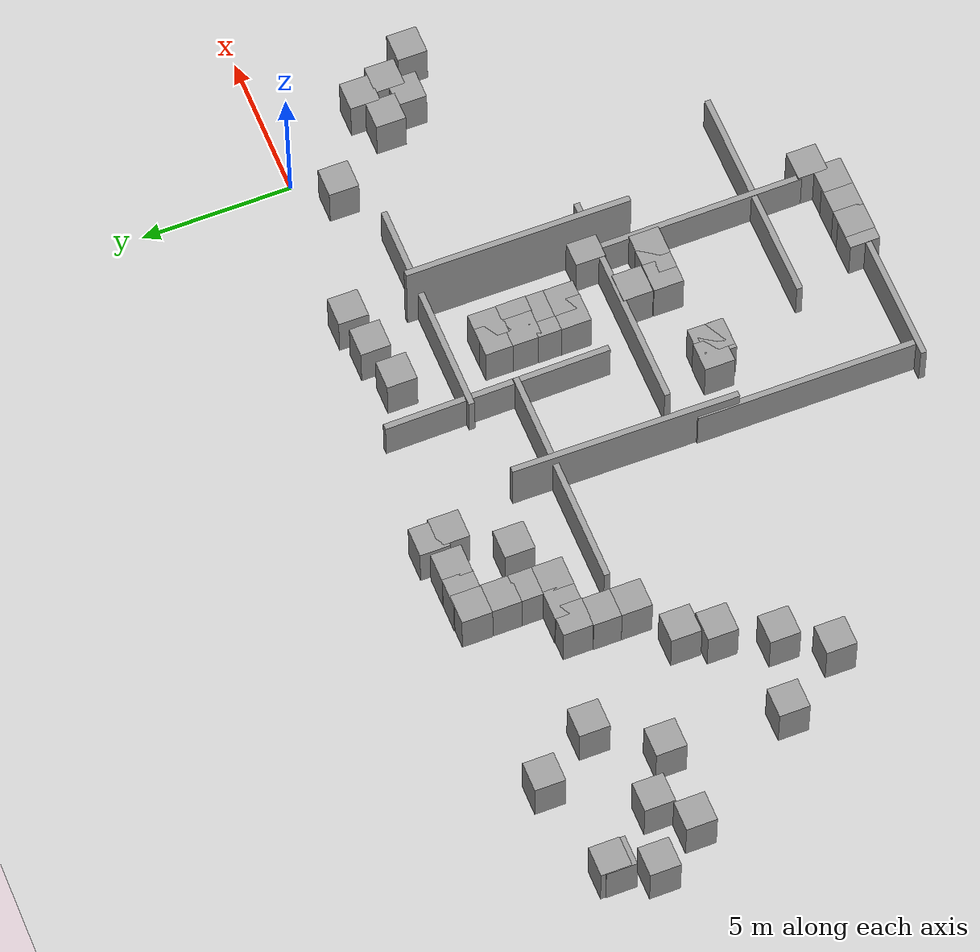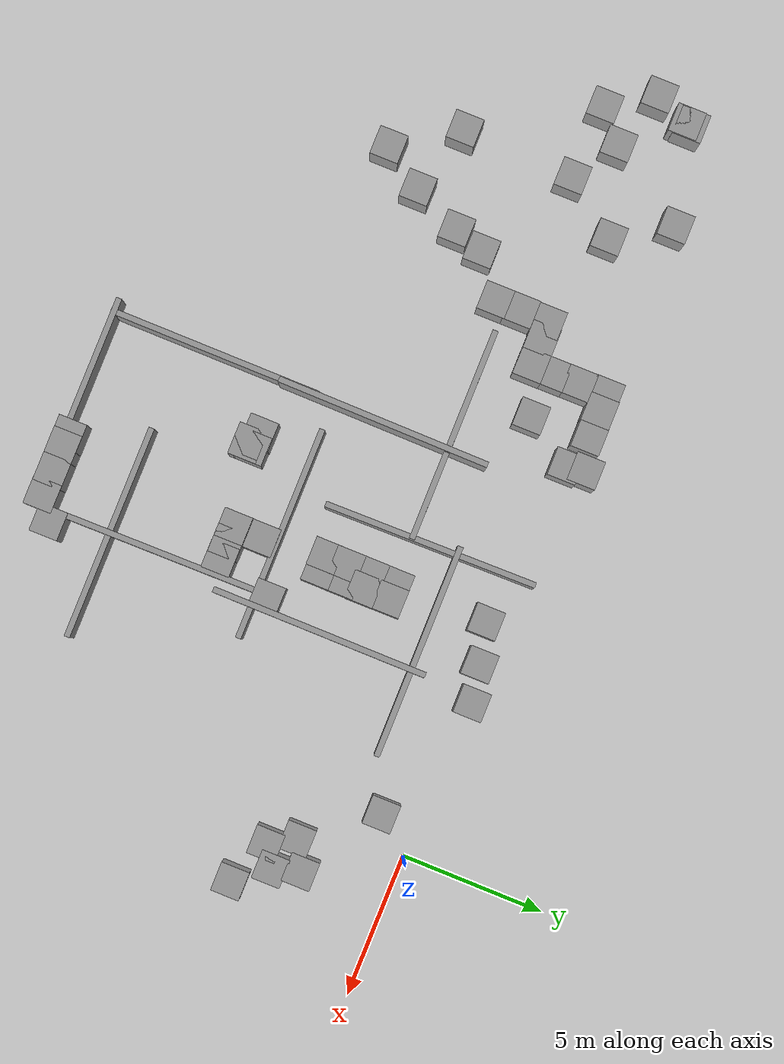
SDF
<sdf version="1.4">
 <world name="default">
  <model name="ground_plane">
   <static>1</static>
   <link name="link">
    <collision name="collision">
     <geometry><plane><normal>0 0 1</normal><size>100 100</size></plane></geometry>
     <surface><friction><ode><mu>100</mu><mu2>50</mu2></ode></friction></surface>
    </collision>
    <visual name="visual">
     <cast_shadows>0</cast_shadows>
     <geometry><plane><normal>0 0 1</normal><size>100 100</size></plane></geometry>
     <material>
      <script><uri>file://media/materials/scripts/gazebo.material</uri><name>Gazebo/Grey</name></script>
     </material>
    </visual>
    <velocity_decay><linear>0</linear><angular>0</angular></velocity_decay>
   </link>
  </model>
  <model name="unit_box_8">
   <pose>0.712903 -3.52038 0.5 0 0 -0.000671</pose>
   <static>1</static>
   <link name="link">
    <inertial>
     <mass>1</mass>
     <inertia><ixx>1</ixx><ixy>0</ixy><ixz>0</ixz><iyy>1</iyy><iyz>0</iyz><izz>1</izz></inertia>
    </inertial>
    <collision name="collision"><geometry><box><size>1 1 2</size></box></geometry></collision>
    <visual name="visual">
     <geometry><box><size>1 1 2</size></box></geometry>
     <material>
      <script><uri>file://media/materials/scripts/gazebo.material</uri><name>Gazebo/Grey</name></script>
     </material>
    </visual>
    <velocity_decay><linear>0</linear><angular>0</angular></velocity_decay>
   </link>
   <static>0</static>
  </model>
  <model name="unit_box_15">
   <pose>-18.4176 -4.09266 0.5 0 0 -3.9e-05</pose>
   <static>1</static>
   <link name="link">
    <inertial>
     <mass>1</mass>
     <inertia><ixx>1</ixx><ixy>0</ixy><ixz>0</ixz><iyy>1</iyy><iyz>0</iyz><izz>1</izz></inertia>
    </inertial>
    <collision name="collision"><geometry><box><size>1 1 2</size></box></geometry></collision>
    <visual name="visual">
     <geometry><box><size>1 1 2</size></box></geometry>
     <material>
      <script><uri>file://media/materials/scripts/gazebo.material</uri><name>Gazebo/Grey</name></script>
     </material>
    </visual>
    <velocity_decay><linear>0</linear><angular>0</angular></velocity_decay>
   </link>
   <static>0</static>
  </model>
  <model name="unit_box_17">
   <pose>-11.3499 -9.74987 0.5 0 0 -1.9e-05</pose>
   <static>1</static>
   <link name="link">
    <inertial>
     <mass>1</mass>
     <inertia><ixx>1</ixx><ixy>0</ixy><ixz>0</ixz><iyy>1</iyy><iyz>0</iyz><izz>1</izz></inertia>
    </inertial>
    <collision name="collision"><geometry><box><size>1 1 2</size></box></geometry></collision>
    <visual name="visual">
     <geometry><box><size>1 1 2</size></box></geometry>
     <material>
      <script><uri>file://media/materials/scripts/gazebo.material</uri><name>Gazebo/Grey</name></script>
     </material>
    </visual>
    <velocity_decay><linear>0</linear><angular>0</angular></velocity_decay>
   </link>
   <static>0</static>
  </model>
  <model name="unit_box_20">
   <pose>-6.91683 -0.051818 0.5 0 0 -1e-05</pose>
   <static>1</static>
   <link name="link">
    <inertial>
     <mass>1</mass>
     <inertia><ixx>1</ixx><ixy>0</ixy><ixz>0</ixz><iyy>1</iyy><iyz>0</iyz><izz>1</izz></inertia>
    </inertial>
    <collision name="collision"><geometry><box><size>1 1 2</size></box></geometry></collision>
    <visual name="visual">
     <geometry><box><size>1 1 2</size></box></geometry>
     <material>
      <script><uri>file://media/materials/scripts/gazebo.material</uri><name>Gazebo/Grey</name></script>
     </material>
    </visual>
    <velocity_decay><linear>0</linear><angular>0</angular></velocity_decay>
   </link>
   <static>0</static>
  </model>
  <model name="unit_box_21">
   <pose>-1.09257 -1.23498 0.5 0 0 -1.2e-05</pose>
   <static>1</static>
   <link name="link">
    <inertial>
     <mass>1</mass>
     <inertia><ixx>1</ixx><ixy>0</ixy><ixz>0</ixz><iyy>1</iyy><iyz>0</iyz><izz>1</izz></inertia>
    </inertial>
    <collision name="collision"><geometry><box><size>1 1 2</size></box></geometry></collision>
    <visual name="visual">
     <geometry><box><size>1 1 2</size></box></geometry>
     <material>
      <script><uri>file://media/materials/scripts/gazebo.material</uri><name>Gazebo/Grey</name></script>
     </material>
    </visual>
    <velocity_decay><linear>0</linear><angular>0</angular></velocity_decay>
   </link>
   <static>0</static>
  </model>
  <model name="unit_box_24">
   <pose>1.94664 -3.96372 0.5 0 0 -1.4e-05</pose>
   <static>1</static>
   <link name="link">
    <inertial>
     <mass>1</mass>
     <inertia><ixx>1</ixx><ixy>0</ixy><ixz>0</ixz><iyy>1</iyy><iyz>0</iyz><izz>1</izz></inertia>
    </inertial>
    <collision name="collision"><geometry><box><size>1 1 2</size></box></geometry></collision>
    <visual name="visual">
     <geometry><box><size>1 1 2</size></box></geometry>
     <material>
      <script><uri>file://media/materials/scripts/gazebo.material</uri><name>Gazebo/Grey</name></script>
     </material>
    </visual>
    <velocity_decay><linear>0</linear><angular>0</angular></velocity_decay>
   </link>
   <static>0</static>
  </model>
  <model name="unit_box_25">
   <pose>-6.35101 -7.46076 0.5 0 0 -1.5e-05</pose>
   <static>1</static>
   <link name="link">
    <inertial>
     <mass>1</mass>
     <inertia><ixx>1</ixx><ixy>0</ixy><ixz>0</ixz><iyy>1</iyy><iyz>0</iyz><izz>1</izz></inertia>
    </inertial>
    <collision name="collision"><geometry><box><size>1 1 2</size></box></geometry></collision>
    <visual name="visual">
     <geometry><box><size>1 1 2</size></box></geometry>
     <material>
      <script><uri>file://media/materials/scripts/gazebo.material</uri><name>Gazebo/Grey</name></script>
     </material>
    </visual>
    <velocity_decay><linear>0</linear><angular>0</angular></velocity_decay>
   </link>
   <static>0</static>
  </model>
  <model name="unit_box_26">
   <pose>2.82516 -5.06373 0.5 0 0 -1.1e-05</pose>
   <static>1</static>
   <link name="link">
    <inertial>
     <mass>1</mass>
     <inertia><ixx>1</ixx><ixy>0</ixy><ixz>0</ixz><iyy>1</iyy><iyz>0</iyz><izz>1</izz></inertia>
    </inertial>
    <collision name="collision"><geometry><box><size>1 1 2</size></box></geometry></collision>
    <visual name="visual">
     <geometry><box><size>1 1 2</size></box></geometry>
     <material>
      <script><uri>file://media/materials/scripts/gazebo.material</uri><name>Gazebo/Grey</name></script>
     </material>
    </visual>
    <velocity_decay><linear>0</linear><angular>0</angular></velocity_decay>
   </link>
   <static>0</static>
  </model>
  <model name="unit_box_27">
   <pose>-8.35413 -5.39726 0.5 0 0 -1e-05</pose>
   <static>1</static>
   <link name="link">
    <inertial>
     <mass>1</mass>
     <inertia><ixx>1</ixx><ixy>0</ixy><ixz>0</ixz><iyy>1</iyy><iyz>0</iyz><izz>1</izz></inertia>
    </inertial>
    <collision name="collision"><geometry><box><size>1 1 2</size></box></geometry></collision>
    <visual name="visual">
     <geometry><box><size>1 1 2</size></box></geometry>
     <material>
      <script><uri>file://media/materials/scripts/gazebo.material</uri><name>Gazebo/Grey</name></script>
     </material>
    </visual>
    <velocity_decay><linear>0</linear><angular>0</angular></velocity_decay>
   </link>
   <static>0</static>
  </model>
  <model name="unit_box_28">
   <pose>1.24112 -4.4264 0.5 0 0 -1.1e-05</pose>
   <static>1</static>
   <link name="link">
    <inertial>
     <mass>1</mass>
     <inertia><ixx>1</ixx><ixy>0</ixy><ixz>0</ixz><iyy>1</iyy><iyz>0</iyz><izz>1</izz></inertia>
    </inertial>
    <collision name="collision"><geometry><box><size>1 1 2</size></box></geometry></collision>
    <visual name="visual">
     <geometry><box><size>1 1 2</size></box></geometry>
     <material>
      <script><uri>file://media/materials/scripts/gazebo.material</uri><name>Gazebo/Grey</name></script>
     </material>
    </visual>
    <velocity_decay><linear>0</linear><angular>0</angular></velocity_decay>
   </link>
   <static>0</static>
  </model>
  <model name="unit_box_35">
   <pose>-7.82124 -6.15776 0.5 0 0 -1.5e-05</pose>
   <static>1</static>
   <link name="link">
    <inertial>
     <mass>1</mass>
     <inertia><ixx>1</ixx><ixy>0</ixy><ixz>0</ixz><iyy>1</iyy><iyz>0</iyz><izz>1</izz></inertia>
    </inertial>
    <collision name="collision"><geometry><box><size>1 1 2</size></box></geometry></collision>
    <visual name="visual">
     <geometry><box><size>1 1 2</size></box></geometry>
     <material>
      <script><uri>file://media/materials/scripts/gazebo.material</uri><name>Gazebo/Grey</name></script>
     </material>
    </visual>
    <velocity_decay><linear>0</linear><angular>0</angular></velocity_decay>
   </link>
   <static>0</static>
  </model>
  <model name="unit_box_36">
   <pose>-8.35812 -6.16943 0.5 0 0 -1.5e-05</pose>
   <static>1</static>
   <link name="link">
    <inertial>
     <mass>1</mass>
     <inertia><ixx>1</ixx><ixy>0</ixy><ixz>0</ixz><iyy>1</iyy><iyz>0</iyz><izz>1</izz></inertia>
    </inertial>
    <collision name="collision"><geometry><box><size>1 1 2</size></box></geometry></collision>
    <visual name="visual">
     <geometry><box><size>1 1 2</size></box></geometry>
     <material>
      <script><uri>file://media/materials/scripts/gazebo.material</uri><name>Gazebo/Grey</name></script>
     </material>
    </visual>
    <velocity_decay><linear>0</linear><angular>0</angular></velocity_decay>
   </link>
   <static>0</static>
  </model>
  <model name="unit_box_37">
   <pose>-7.80224 -4.57019 0.5 0 0 -1.4e-05</pose>
   <static>1</static>
   <link name="link">
    <inertial>
     <mass>1</mass>
     <inertia><ixx>1</ixx><ixy>0</ixy><ixz>0</ixz><iyy>1</iyy><iyz>0</iyz><izz>1</izz></inertia>
    </inertial>
    <collision name="collision"><geometry><box><size>1 1 2</size></box></geometry></collision>
    <visual name="visual">
     <geometry><box><size>1 1 2</size></box></geometry>
     <material>
      <script><uri>file://media/materials/scripts/gazebo.material</uri><name>Gazebo/Grey</name></script>
     </material>
    </visual>
    <velocity_decay><linear>0</linear><angular>0</angular></velocity_decay>
   </link>
   <static>0</static>
  </model>
  <model name="unit_box_42">
   <pose>-18.4169 -3.16567 0.5 0 -0 0.001796</pose>
   <static>1</static>
   <link name="link">
    <inertial>
     <mass>1</mass>
     <inertia><ixx>1</ixx><ixy>0</ixy><ixz>0</ixz><iyy>1</iyy><iyz>0</iyz><izz>1</izz></inertia>
    </inertial>
    <collision name="collision"><geometry><box><size>1 1 2</size></box></geometry></collision>
    <visual name="visual">
     <geometry><box><size>1 1 2</size></box></geometry>
     <material>
      <script><uri>file://media/materials/scripts/gazebo.material</uri><name>Gazebo/Grey</name></script>
     </material>
    </visual>
    <velocity_decay><linear>0</linear><angular>0</angular></velocity_decay>
   </link>
   <static>0</static>
  </model>
  <model name="unit_box_43">
   <pose>-18.3967 -2.18667 0.5 0 -0 0.001375</pose>
   <static>1</static>
   <link name="link">
    <inertial>
     <mass>1</mass>
     <inertia><ixx>1</ixx><ixy>0</ixy><ixz>0</ixz><iyy>1</iyy><iyz>0</iyz><izz>1</izz></inertia>
    </inertial>
    <collision name="collision"><geometry><box><size>1 1 2</size></box></geometry></collision>
    <visual name="visual">
     <geometry><box><size>1 1 2</size></box></geometry>
     <material>
      <script><uri>file://media/materials/scripts/gazebo.material</uri><name>Gazebo/Grey</name></script>
     </material>
    </visual>
    <velocity_decay><linear>0</linear><angular>0</angular></velocity_decay>
   </link>
   <static>0</static>
  </model>
  <model name="unit_box_44">
   <pose>-17.7736 -2.1615 0.5 0 -0 0.000932</pose>
   <static>1</static>
   <link name="link">
    <inertial>
     <mass>1</mass>
     <inertia><ixx>1</ixx><ixy>0</ixy><ixz>0</ixz><iyy>1</iyy><iyz>0</iyz><izz>1</izz></inertia>
    </inertial>
    <collision name="collision"><geometry><box><size>1 1 2</size></box></geometry></collision>
    <visual name="visual">
     <geometry><box><size>1 1 2</size></box></geometry>
     <material>
      <script><uri>file://media/materials/scripts/gazebo.material</uri><name>Gazebo/Grey</name></script>
     </material>
    </visual>
    <velocity_decay><linear>0</linear><angular>0</angular></velocity_decay>
   </link>
   <static>0</static>
  </model>
  <model name="unit_box_45">
   <pose>-16.8401 -2.16548 0.5 0 -0 0.000893</pose>
   <static>1</static>
   <link name="link">
    <inertial>
     <mass>1</mass>
     <inertia><ixx>1</ixx><ixy>0</ixy><ixz>0</ixz><iyy>1</iyy><iyz>0</iyz><izz>1</izz></inertia>
    </inertial>
    <collision name="collision"><geometry><box><size>1 1 2</size></box></geometry></collision>
    <visual name="visual">
     <geometry><box><size>1 1 2</size></box></geometry>
     <material>
      <script><uri>file://media/materials/scripts/gazebo.material</uri><name>Gazebo/Grey</name></script>
     </material>
    </visual>
    <velocity_decay><linear>0</linear><angular>0</angular></velocity_decay>
   </link>
   <static>0</static>
  </model>
  <model name="unit_box_46">
   <pose>-16.8434 -1.38674 0.5 0 -0 0.000802</pose>
   <static>1</static>
   <link name="link">
    <inertial>
     <mass>1</mass>
     <inertia><ixx>1</ixx><ixy>0</ixy><ixz>0</ixz><iyy>1</iyy><iyz>0</iyz><izz>1</izz></inertia>
    </inertial>
    <collision name="collision"><geometry><box><size>1 1 2</size></box></geometry></collision>
    <visual name="visual">
     <geometry><box><size>1 1 2</size></box></geometry>
     <material>
      <script><uri>file://media/materials/scripts/gazebo.material</uri><name>Gazebo/Grey</name></script>
     </material>
    </visual>
    <velocity_decay><linear>0</linear><angular>0</angular></velocity_decay>
   </link>
   <static>0</static>
  </model>
  <model name="unit_box_47">
   <pose>-15.3131 0.534187 0.5 0 -0 0.000729</pose>
   <static>1</static>
   <link name="link">
    <inertial>
     <mass>1</mass>
     <inertia><ixx>1</ixx><ixy>0</ixy><ixz>0</ixz><iyy>1</iyy><iyz>0</iyz><izz>1</izz></inertia>
    </inertial>
    <collision name="collision"><geometry><box><size>1 1 2</size></box></geometry></collision>
    <visual name="visual">
     <geometry><box><size>1 1 2</size></box></geometry>
     <material>
      <script><uri>file://media/materials/scripts/gazebo.material</uri><name>Gazebo/Grey</name></script>
     </material>
    </visual>
    <velocity_decay><linear>0</linear><angular>0</angular></velocity_decay>
   </link>
   <static>0</static>
  </model>
  <model name="unit_box_48">
   <pose>-16.2487 0.525396 0.5 0 0 -0.000119</pose>
   <static>1</static>
   <link name="link">
    <inertial>
     <mass>1</mass>
     <inertia><ixx>1</ixx><ixy>0</ixy><ixz>0</ixz><iyy>1</iyy><iyz>0</iyz><izz>1</izz></inertia>
    </inertial>
    <collision name="collision"><geometry><box><size>1 1 2</size></box></geometry></collision>
    <visual name="visual">
     <geometry><box><size>1 1 2</size></box></geometry>
     <material>
      <script><uri>file://media/materials/scripts/gazebo.material</uri><name>Gazebo/Grey</name></script>
     </material>
    </visual>
    <velocity_decay><linear>0</linear><angular>0</angular></velocity_decay>
   </link>
   <static>0</static>
  </model>
  <model name="unit_box_49">
   <pose>-16.8494 -0.460464 0.5 0 0 -7.3e-05</pose>
   <static>1</static>
   <link name="link">
    <inertial>
     <mass>1</mass>
     <inertia><ixx>1</ixx><ixy>0</ixy><ixz>0</ixz><iyy>1</iyy><iyz>0</iyz><izz>1</izz></inertia>
    </inertial>
    <collision name="collision"><geometry><box><size>1 1 2</size></box></geometry></collision>
    <visual name="visual">
     <geometry><box><size>1 1 2</size></box></geometry>
     <material>
      <script><uri>file://media/materials/scripts/gazebo.material</uri><name>Gazebo/Grey</name></script>
     </material>
    </visual>
    <velocity_decay><linear>0</linear><angular>0</angular></velocity_decay>
   </link>
   <static>0</static>
  </model>
  <model name="unit_box_50">
   <pose>-16.8613 0.50095 0.5 0 0 -7.1e-05</pose>
   <static>1</static>
   <link name="link">
    <inertial>
     <mass>1</mass>
     <inertia><ixx>1</ixx><ixy>0</ixy><ixz>0</ixz><iyy>1</iyy><iyz>0</iyz><izz>1</izz></inertia>
    </inertial>
    <collision name="collision"><geometry><box><size>1 1 2</size></box></geometry></collision>
    <visual name="visual">
     <geometry><box><size>1 1 2</size></box></geometry>
     <material>
      <script><uri>file://media/materials/scripts/gazebo.material</uri><name>Gazebo/Grey</name></script>
     </material>
    </visual>
    <velocity_decay><linear>0</linear><angular>0</angular></velocity_decay>
   </link>
   <static>0</static>
  </model>
  <model name="unit_box_223">
   <pose>-23.3762 -7.18482 0.5 0 -0 1e-06</pose>
   <static>1</static>
   <link name="link">
    <inertial>
     <mass>1</mass>
     <inertia><ixx>1</ixx><ixy>0</ixy><ixz>0</ixz><iyy>1</iyy><iyz>0</iyz><izz>1</izz></inertia>
    </inertial>
    <collision name="collision"><geometry><box><size>1 1 2</size></box></geometry></collision>
    <visual name="visual">
     <geometry><box><size>1 1 2</size></box></geometry>
     <material>
      <script><uri>file://media/materials/scripts/gazebo.material</uri><name>Gazebo/Grey</name></script>
     </material>
    </visual>
    <velocity_decay><linear>0</linear><angular>0</angular></velocity_decay>
   </link>
   <static>0</static>
  </model>
  <model name="unit_box_227">
   <pose>-7.54198 -9.37303 0.5 0 0 -4e-06</pose>
   <static>1</static>
   <link name="link">
    <inertial>
     <mass>1</mass>
     <inertia><ixx>1</ixx><ixy>0</ixy><ixz>0</ixz><iyy>1</iyy><iyz>0</iyz><izz>1</izz></inertia>
    </inertial>
    <collision name="collision"><geometry><box><size>1 1 2</size></box></geometry></collision>
    <visual name="visual">
     <geometry><box><size>1 1 2</size></box></geometry>
     <material>
      <script><uri>file://media/materials/scripts/gazebo.material</uri><name>Gazebo/Grey</name></script>
     </material>
    </visual>
    <velocity_decay><linear>0</linear><angular>0</angular></velocity_decay>
   </link>
   <static>0</static>
  </model>
  <model name="unit_box_228">
   <pose>-5.96503 -15.1483 0.5 0 0 -4e-06</pose>
   <static>1</static>
   <link name="link">
    <inertial>
     <mass>1</mass>
     <inertia><ixx>1</ixx><ixy>0</ixy><ixz>0</ixz><iyy>1</iyy><iyz>0</iyz><izz>1</izz></inertia>
    </inertial>
    <collision name="collision"><geometry><box><size>1 1 2</size></box></geometry></collision>
    <visual name="visual">
     <geometry><box><size>1 1 2</size></box></geometry>
     <material>
      <script><uri>file://media/materials/scripts/gazebo.material</uri><name>Gazebo/Grey</name></script>
     </material>
    </visual>
    <velocity_decay><linear>0</linear><angular>0</angular></velocity_decay>
   </link>
   <static>0</static>
  </model>
  <model name="unit_box_229">
   <pose>-8.50781 -15.6714 0.5 0 0 -3e-06</pose>
   <static>1</static>
   <link name="link">
    <inertial>
     <mass>1</mass>
     <inertia><ixx>1</ixx><ixy>0</ixy><ixz>0</ixz><iyy>1</iyy><iyz>0</iyz><izz>1</izz></inertia>
    </inertial>
    <collision name="collision"><geometry><box><size>1 1 2</size></box></geometry></collision>
    <visual name="visual">
     <geometry><box><size>1 1 2</size></box></geometry>
     <material>
      <script><uri>file://media/materials/scripts/gazebo.material</uri><name>Gazebo/Grey</name></script>
     </material>
    </visual>
    <velocity_decay><linear>0</linear><angular>0</angular></velocity_decay>
   </link>
   <static>0</static>
  </model>
  <model name="unit_box_230">
   <pose>-8.31895 -0.38234 0.5 0 0 -4e-06</pose>
   <static>1</static>
   <link name="link">
    <inertial>
     <mass>1</mass>
     <inertia><ixx>1</ixx><ixy>0</ixy><ixz>0</ixz><iyy>1</iyy><iyz>0</iyz><izz>1</izz></inertia>
    </inertial>
    <collision name="collision"><geometry><box><size>1 1 2</size></box></geometry></collision>
    <visual name="visual">
     <geometry><box><size>1 1 2</size></box></geometry>
     <material>
      <script><uri>file://media/materials/scripts/gazebo.material</uri><name>Gazebo/Grey</name></script>
     </material>
    </visual>
    <velocity_decay><linear>0</linear><angular>0</angular></velocity_decay>
   </link>
   <static>0</static>
  </model>
  <model name="unit_box_231">
   <pose>-5.63143 0.188984 0.5 0 0 -5e-06</pose>
   <static>1</static>
   <link name="link">
    <inertial>
     <mass>1</mass>
     <inertia><ixx>1</ixx><ixy>0</ixy><ixz>0</ixz><iyy>1</iyy><iyz>0</iyz><izz>1</izz></inertia>
    </inertial>
    <collision name="collision"><geometry><box><size>1 1 2</size></box></geometry></collision>
    <visual name="visual">
     <geometry><box><size>1 1 2</size></box></geometry>
     <material>
      <script><uri>file://media/materials/scripts/gazebo.material</uri><name>Gazebo/Grey</name></script>
     </material>
    </visual>
    <velocity_decay><linear>0</linear><angular>0</angular></velocity_decay>
   </link>
   <static>0</static>
  </model>
  <model name="unit_box_232">
   <pose>-8.35015 -4.54738 0.5 0 0 -5e-06</pose>
   <static>1</static>
   <link name="link">
    <inertial>
     <mass>1</mass>
     <inertia><ixx>1</ixx><ixy>0</ixy><ixz>0</ixz><iyy>1</iyy><iyz>0</iyz><izz>1</izz></inertia>
    </inertial>
    <collision name="collision"><geometry><box><size>1 1 2</size></box></geometry></collision>
    <visual name="visual">
     <geometry><box><size>1 1 2</size></box></geometry>
     <material>
      <script><uri>file://media/materials/scripts/gazebo.material</uri><name>Gazebo/Grey</name></script>
     </material>
    </visual>
    <velocity_decay><linear>0</linear><angular>0</angular></velocity_decay>
   </link>
   <static>0</static>
  </model>
  <model name="unit_box_235">
   <pose>-21.7803 -1.34686 0.5 0 -0 1e-06</pose>
   <static>1</static>
   <link name="link">
    <inertial>
     <mass>1</mass>
     <inertia><ixx>1</ixx><ixy>0</ixy><ixz>0</ixz><iyy>1</iyy><iyz>0</iyz><izz>1</izz></inertia>
    </inertial>
    <collision name="collision"><geometry><box><size>1 1 2</size></box></geometry></collision>
    <visual name="visual">
     <geometry><box><size>1 1 2</size></box></geometry>
     <material>
      <script><uri>file://media/materials/scripts/gazebo.material</uri><name>Gazebo/Grey</name></script>
     </material>
    </visual>
    <velocity_decay><linear>0</linear><angular>0</angular></velocity_decay>
   </link>
   <static>0</static>
  </model>
  <model name="unit_box_236">
   <pose>-14.2235 0.83553 0.5 0 -0 1e-06</pose>
   <static>1</static>
   <link name="link">
    <inertial>
     <mass>1</mass>
     <inertia><ixx>1</ixx><ixy>0</ixy><ixz>0</ixz><iyy>1</iyy><iyz>0</iyz><izz>1</izz></inertia>
    </inertial>
    <collision name="collision"><geometry><box><size>1 1 2</size></box></geometry></collision>
    <visual name="visual">
     <geometry><box><size>1 1 2</size></box></geometry>
     <material>
      <script><uri>file://media/materials/scripts/gazebo.material</uri><name>Gazebo/Grey</name></script>
     </material>
    </visual>
    <velocity_decay><linear>0</linear><angular>0</angular></velocity_decay>
   </link>
   <static>0</static>
  </model>
  <model name="unit_box_237">
   <pose>-15.2428 -1.53742 0.5 0 -0 1e-06</pose>
   <static>1</static>
   <link name="link">
    <inertial>
     <mass>1</mass>
     <inertia><ixx>1</ixx><ixy>0</ixy><ixz>0</ixz><iyy>1</iyy><iyz>0</iyz><izz>1</izz></inertia>
    </inertial>
    <collision name="collision"><geometry><box><size>1 1 2</size></box></geometry></collision>
    <visual name="visual">
     <geometry><box><size>1 1 2</size></box></geometry>
     <material>
      <script><uri>file://media/materials/scripts/gazebo.material</uri><name>Gazebo/Grey</name></script>
     </material>
    </visual>
    <velocity_decay><linear>0</linear><angular>0</angular></velocity_decay>
   </link>
   <static>0</static>
  </model>
  <model name="unit_box_238">
   <pose>-7.81466 -5.28863 0.5 0 -0 2e-06</pose>
   <static>1</static>
   <link name="link">
    <inertial>
     <mass>1</mass>
     <inertia><ixx>1</ixx><ixy>0</ixy><ixz>0</ixz><iyy>1</iyy><iyz>0</iyz><izz>1</izz></inertia>
    </inertial>
    <collision name="collision"><geometry><box><size>1 1 2</size></box></geometry></collision>
    <visual name="visual">
     <geometry><box><size>1 1 2</size></box></geometry>
     <material>
      <script><uri>file://media/materials/scripts/gazebo.material</uri><name>Gazebo/Grey</name></script>
     </material>
    </visual>
    <velocity_decay><linear>0</linear><angular>0</angular></velocity_decay>
   </link>
   <static>0</static>
  </model>
  <model name="unit_box_239">
   <pose>-8.34503 -3.64522 0.499999 3e-06 -0 2e-06</pose>
   <static>1</static>
   <link name="link">
    <inertial>
     <mass>1</mass>
     <inertia><ixx>1</ixx><ixy>0</ixy><ixz>0</ixz><iyy>1</iyy><iyz>0</iyz><izz>1</izz></inertia>
    </inertial>
    <collision name="collision"><geometry><box><size>1 1 2</size></box></geometry></collision>
    <visual name="visual">
     <geometry><box><size>1 1 2</size></box></geometry>
     <material>
      <script><uri>file://media/materials/scripts/gazebo.material</uri><name>Gazebo/Grey</name></script>
     </material>
    </visual>
    <velocity_decay><linear>0</linear><angular>0</angular></velocity_decay>
   </link>
   <static>0</static>
  </model>
  <model name="unit_box_240">
   <pose>-22.9834 0.575171 0.5 0 0 -3e-06</pose>
   <static>1</static>
   <link name="link">
    <inertial>
     <mass>1</mass>
     <inertia><ixx>1</ixx><ixy>0</ixy><ixz>0</ixz><iyy>1</iyy><iyz>0</iyz><izz>1</izz></inertia>
    </inertial>
    <collision name="collision"><geometry><box><size>1 1 2</size></box></geometry></collision>
    <visual name="visual">
     <geometry><box><size>1 1 2</size></box></geometry>
     <material>
      <script><uri>file://media/materials/scripts/gazebo.material</uri><name>Gazebo/Grey</name></script>
     </material>
    </visual>
    <velocity_decay><linear>0</linear><angular>0</angular></velocity_decay>
   </link>
   <static>0</static>
  </model>
  <model name="unit_box_246">
   <pose>-23.2415 -3.23995 0.5 0 0 -3e-06</pose>
   <static>1</static>
   <link name="link">
    <inertial>
     <mass>1</mass>
     <inertia><ixx>1</ixx><ixy>0</ixy><ixz>0</ixz><iyy>1</iyy><iyz>0</iyz><izz>1</izz></inertia>
    </inertial>
    <collision name="collision"><geometry><box><size>1 1 2</size></box></geometry></collision>
    <visual name="visual">
     <geometry><box><size>1 1 2</size></box></geometry>
     <material>
      <script><uri>file://media/materials/scripts/gazebo.material</uri><name>Gazebo/Grey</name></script>
     </material>
    </visual>
    <velocity_decay><linear>0</linear><angular>0</angular></velocity_decay>
   </link>
   <static>0</static>
  </model>
  <model name="unit_box_247">
   <pose>-26.335 -0.194591 0.5 0 0 -1.4e-05</pose>
   <static>1</static>
   <link name="link">
    <inertial>
     <mass>1</mass>
     <inertia><ixx>1</ixx><ixy>0</ixy><ixz>0</ixz><iyy>1</iyy><iyz>0</iyz><izz>1</izz></inertia>
    </inertial>
    <collision name="collision"><geometry><box><size>1 1 2</size></box></geometry></collision>
    <visual name="visual">
     <geometry><box><size>1 1 2</size></box></geometry>
     <material>
      <script><uri>file://media/materials/scripts/gazebo.material</uri><name>Gazebo/Grey</name></script>
     </material>
    </visual>
    <velocity_decay><linear>0</linear><angular>0</angular></velocity_decay>
   </link>
   <static>0</static>
  </model>
  <model name="unit_box_248">
   <pose>-26.8779 -1.55252 0.5 0 0 -1.6e-05</pose>
   <static>1</static>
   <link name="link">
    <inertial>
     <mass>1</mass>
     <inertia><ixx>1</ixx><ixy>0</ixy><ixz>0</ixz><iyy>1</iyy><iyz>0</iyz><izz>1</izz></inertia>
    </inertial>
    <collision name="collision"><geometry><box><size>1 1 2</size></box></geometry></collision>
    <visual name="visual">
     <geometry><box><size>1 1 2</size></box></geometry>
     <material>
      <script><uri>file://media/materials/scripts/gazebo.material</uri><name>Gazebo/Grey</name></script>
     </material>
    </visual>
    <velocity_decay><linear>0</linear><angular>0</angular></velocity_decay>
   </link>
   <static>0</static>
  </model>
  <model name="unit_box_249">
   <pose>-24.8265 -2.2122 0.5 0 0 -1.3e-05</pose>
   <static>1</static>
   <link name="link">
    <inertial>
     <mass>1</mass>
     <inertia><ixx>1</ixx><ixy>0</ixy><ixz>0</ixz><iyy>1</iyy><iyz>0</iyz><izz>1</izz></inertia>
    </inertial>
    <collision name="collision"><geometry><box><size>1 1 2</size></box></geometry></collision>
    <visual name="visual">
     <geometry><box><size>1 1 2</size></box></geometry>
     <material>
      <script><uri>file://media/materials/scripts/gazebo.material</uri><name>Gazebo/Grey</name></script>
     </material>
    </visual>
    <velocity_decay><linear>0</linear><angular>0</angular></velocity_decay>
   </link>
   <static>0</static>
  </model>
  <model name="unit_box_251">
   <pose>-25.8708 -3.12758 0.5 1.61559e-27 -1e-06 -1.2e-05</pose>
   <static>1</static>
   <link name="link">
    <inertial>
     <mass>1</mass>
     <inertia><ixx>1</ixx><ixy>0</ixy><ixz>0</ixz><iyy>1</iyy><iyz>0</iyz><izz>1</izz></inertia>
    </inertial>
    <collision name="collision"><geometry><box><size>1 1 2</size></box></geometry></collision>
    <visual name="visual">
     <geometry><box><size>1 1 2</size></box></geometry>
     <material>
      <script><uri>file://media/materials/scripts/gazebo.material</uri><name>Gazebo/Grey</name></script>
     </material>
    </visual>
    <velocity_decay><linear>0</linear><angular>0</angular></velocity_decay>
   </link>
   <static>0</static>
  </model>
  <model name="unit_box_252">
   <pose>-20.9502 -7.90204 0.5 0 0 -1.1e-05</pose>
   <static>1</static>
   <link name="link">
    <inertial>
     <mass>1</mass>
     <inertia><ixx>1</ixx><ixy>0</ixy><ixz>0</ixz><iyy>1</iyy><iyz>0</iyz><izz>1</izz></inertia>
    </inertial>
    <collision name="collision"><geometry><box><size>1 1 2</size></box></geometry></collision>
    <visual name="visual">
     <geometry><box><size>1 1 2</size></box></geometry>
     <material>
      <script><uri>file://media/materials/scripts/gazebo.material</uri><name>Gazebo/Grey</name></script>
     </material>
    </visual>
    <velocity_decay><linear>0</linear><angular>0</angular></velocity_decay>
   </link>
   <static>0</static>
  </model>
  <model name="unit_box_253">
   <pose>-26.3608 -0.357027 0.5 0 0 -1e-05</pose>
   <static>1</static>
   <link name="link">
    <inertial>
     <mass>1</mass>
     <inertia><ixx>1</ixx><ixy>0</ixy><ixz>0</ixz><iyy>1</iyy><iyz>0</iyz><izz>1</izz></inertia>
    </inertial>
    <collision name="collision"><geometry><box><size>1 1 2</size></box></geometry></collision>
    <visual name="visual">
     <geometry><box><size>1 1 2</size></box></geometry>
     <material>
      <script><uri>file://media/materials/scripts/gazebo.material</uri><name>Gazebo/Grey</name></script>
     </material>
    </visual>
    <velocity_decay><linear>0</linear><angular>0</angular></velocity_decay>
   </link>
   <static>0</static>
  </model>
  <model name="unit_box_254">
   <pose>-10.9404 -9.97796 0.5 0 0 -1e-05</pose>
   <static>1</static>
   <link name="link">
    <inertial>
     <mass>1</mass>
     <inertia><ixx>1</ixx><ixy>0</ixy><ixz>0</ixz><iyy>1</iyy><iyz>0</iyz><izz>1</izz></inertia>
    </inertial>
    <collision name="collision"><geometry><box><size>1 1 2</size></box></geometry></collision>
    <visual name="visual">
     <geometry><box><size>1 1 2</size></box></geometry>
     <material>
      <script><uri>file://media/materials/scripts/gazebo.material</uri><name>Gazebo/Grey</name></script>
     </material>
    </visual>
    <velocity_decay><linear>0</linear><angular>0</angular></velocity_decay>
   </link>
   <static>0</static>
  </model>
  <model name="unit_box_255">
   <pose>-8.1024 -8.34705 0.5 0 0 -8e-06</pose>
   <static>1</static>
   <link name="link">
    <inertial>
     <mass>1</mass>
     <inertia><ixx>1</ixx><ixy>0</ixy><ixz>0</ixz><iyy>1</iyy><iyz>0</iyz><izz>1</izz></inertia>
    </inertial>
    <collision name="collision"><geometry><box><size>1 1 2</size></box></geometry></collision>
    <visual name="visual">
     <geometry><box><size>1 1 2</size></box></geometry>
     <material>
      <script><uri>file://media/materials/scripts/gazebo.material</uri><name>Gazebo/Grey</name></script>
     </material>
    </visual>
    <velocity_decay><linear>0</linear><angular>0</angular></velocity_decay>
   </link>
   <static>0</static>
  </model>
  <model name="unit_box_256">
   <pose>-10.8116 -9.77577 0.5 0 0 -7e-06</pose>
   <static>1</static>
   <link name="link">
    <inertial>
     <mass>1</mass>
     <inertia><ixx>1</ixx><ixy>0</ixy><ixz>0</ixz><iyy>1</iyy><iyz>0</iyz><izz>1</izz></inertia>
    </inertial>
    <collision name="collision"><geometry><box><size>1 1 2</size></box></geometry></collision>
    <visual name="visual">
     <geometry><box><size>1 1 2</size></box></geometry>
     <material>
      <script><uri>file://media/materials/scripts/gazebo.material</uri><name>Gazebo/Grey</name></script>
     </material>
    </visual>
    <velocity_decay><linear>0</linear><angular>0</angular></velocity_decay>
   </link>
   <static>0</static>
  </model>
  <model name="unit_box_257">
   <pose>-10.8127 -9.9771 0.5 0 0 -7e-06</pose>
   <static>1</static>
   <link name="link">
    <inertial>
     <mass>1</mass>
     <inertia><ixx>1</ixx><ixy>0</ixy><ixz>0</ixz><iyy>1</iyy><iyz>0</iyz><izz>1</izz></inertia>
    </inertial>
    <collision name="collision"><geometry><box><size>1 1 2</size></box></geometry></collision>
    <visual name="visual">
     <geometry><box><size>1 1 2</size></box></geometry>
     <material>
      <script><uri>file://media/materials/scripts/gazebo.material</uri><name>Gazebo/Grey</name></script>
     </material>
    </visual>
    <velocity_decay><linear>0</linear><angular>0</angular></velocity_decay>
   </link>
   <static>0</static>
  </model>
  <model name="unit_box_258">
   <pose>-7.57698 -15.6716 0.5 0 0 -5e-06</pose>
   <static>1</static>
   <link name="link">
    <inertial>
     <mass>1</mass>
     <inertia><ixx>1</ixx><ixy>0</ixy><ixz>0</ixz><iyy>1</iyy><iyz>0</iyz><izz>1</izz></inertia>
    </inertial>
    <collision name="collision"><geometry><box><size>1 1 2</size></box></geometry></collision>
    <visual name="visual">
     <geometry><box><size>1 1 2</size></box></geometry>
     <material>
      <script><uri>file://media/materials/scripts/gazebo.material</uri><name>Gazebo/Grey</name></script>
     </material>
    </visual>
    <velocity_decay><linear>0</linear><angular>0</angular></velocity_decay>
   </link>
   <static>0</static>
  </model>
  <model name="unit_box_261">
   <pose>-6.73248 -15.6808 0.500003 2e-06 3.23117e-27 -7e-06</pose>
   <static>1</static>
   <link name="link">
    <inertial>
     <mass>1</mass>
     <inertia><ixx>1</ixx><ixy>0</ixy><ixz>0</ixz><iyy>1</iyy><iyz>0</iyz><izz>1</izz></inertia>
    </inertial>
    <collision name="collision"><geometry><box><size>1 1 2</size></box></geometry></collision>
    <visual name="visual">
     <geometry><box><size>1 1 2</size></box></geometry>
     <material>
      <script><uri>file://media/materials/scripts/gazebo.material</uri><name>Gazebo/Grey</name></script>
     </material>
    </visual>
    <velocity_decay><linear>0</linear><angular>0</angular></velocity_decay>
   </link>
   <static>0</static>
  </model>
  <model name="unit_box_262">
   <pose>-6.97581 -9.38265 0.5 0 0 -1.1e-05</pose>
   <static>1</static>
   <link name="link">
    <inertial>
     <mass>1</mass>
     <inertia><ixx>1</ixx><ixy>0</ixy><ixz>0</ixz><iyy>1</iyy><iyz>0</iyz><izz>1</izz></inertia>
    </inertial>
    <collision name="collision"><geometry><box><size>1 1 2</size></box></geometry></collision>
    <visual name="visual">
     <geometry><box><size>1 1 2</size></box></geometry>
     <material>
      <script><uri>file://media/materials/scripts/gazebo.material</uri><name>Gazebo/Grey</name></script>
     </material>
    </visual>
    <velocity_decay><linear>0</linear><angular>0</angular></velocity_decay>
   </link>
   <static>0</static>
  </model>
  <model name="unit_box_263">
   <pose>-8.1116 -9.36707 0.499998 3e-06 -0 -1.1e-05</pose>
   <static>1</static>
   <link name="link">
    <inertial>
     <mass>1</mass>
     <inertia><ixx>1</ixx><ixy>0</ixy><ixz>0</ixz><iyy>1</iyy><iyz>0</iyz><izz>1</izz></inertia>
    </inertial>
    <collision name="collision"><geometry><box><size>1 1 2</size></box></geometry></collision>
    <visual name="visual">
     <geometry><box><size>1 1 2</size></box></geometry>
     <material>
      <script><uri>file://media/materials/scripts/gazebo.material</uri><name>Gazebo/Grey</name></script>
     </material>
    </visual>
    <velocity_decay><linear>0</linear><angular>0</angular></velocity_decay>
   </link>
   <static>0</static>
  </model>
  <model name="unit_box_265">
   <pose>-7.81065 -3.6396 0.500001 2e-06 -0 -1.1e-05</pose>
   <static>1</static>
   <link name="link">
    <inertial>
     <mass>1</mass>
     <inertia><ixx>1</ixx><ixy>0</ixy><ixz>0</ixz><iyy>1</iyy><iyz>0</iyz><izz>1</izz></inertia>
    </inertial>
    <collision name="collision"><geometry><box><size>1 1 2</size></box></geometry></collision>
    <visual name="visual">
     <geometry><box><size>1 1 2</size></box></geometry>
     <material>
      <script><uri>file://media/materials/scripts/gazebo.material</uri><name>Gazebo/Grey</name></script>
     </material>
    </visual>
    <velocity_decay><linear>0</linear><angular>0</angular></velocity_decay>
   </link>
   <static>0</static>
  </model>
  <model name="unit_box_266">
   <pose>-8.91888 -15.6631 0.499992 1e-06 3.23117e-27 -8e-06</pose>
   <static>1</static>
   <link name="link">
    <inertial>
     <mass>1</mass>
     <inertia><ixx>1</ixx><ixy>0</ixy><ixz>0</ixz><iyy>1</iyy><iyz>0</iyz><izz>1</izz></inertia>
    </inertial>
    <collision name="collision"><geometry><box><size>1 1 2</size></box></geometry></collision>
    <visual name="visual">
     <geometry><box><size>1 1 2</size></box></geometry>
     <material>
      <script><uri>file://media/materials/scripts/gazebo.material</uri><name>Gazebo/Grey</name></script>
     </material>
    </visual>
    <velocity_decay><linear>0</linear><angular>0</angular></velocity_decay>
   </link>
   <static>0</static>
  </model>
  <model name="unit_box_268">
   <pose>1.66559 -3.01464 0.500001 1e-06 8.07794e-28 -7e-06</pose>
   <static>1</static>
   <link name="link">
    <inertial>
     <mass>1</mass>
     <inertia><ixx>1</ixx><ixy>0</ixy><ixz>0</ixz><iyy>1</iyy><iyz>0</iyz><izz>1</izz></inertia>
    </inertial>
    <collision name="collision"><geometry><box><size>1 1 2</size></box></geometry></collision>
    <visual name="visual">
     <geometry><box><size>1 1 2</size></box></geometry>
     <material>
      <script><uri>file://media/materials/scripts/gazebo.material</uri><name>Gazebo/Grey</name></script>
     </material>
    </visual>
    <velocity_decay><linear>0</linear><angular>0</angular></velocity_decay>
   </link>
   <static>0</static>
  </model>
  <model name="unit_box_269">
   <pose>-20.1572 -6.1944 0.5 0 0 -1e-05</pose>
   <static>1</static>
   <link name="link">
    <inertial>
     <mass>1</mass>
     <inertia><ixx>1</ixx><ixy>0</ixy><ixz>0</ixz><iyy>1</iyy><iyz>0</iyz><izz>1</izz></inertia>
    </inertial>
    <collision name="collision"><geometry><box><size>1 1 2</size></box></geometry></collision>
    <visual name="visual">
     <geometry><box><size>1 1 2</size></box></geometry>
     <material>
      <script><uri>file://media/materials/scripts/gazebo.material</uri><name>Gazebo/Grey</name></script>
     </material>
    </visual>
    <velocity_decay><linear>0</linear><angular>0</angular></velocity_decay>
   </link>
   <static>0</static>
  </model>
  <model name="unit_box_270">
   <pose>-21.9192 -9.34126 0.5 0 0 -1e-05</pose>
   <static>1</static>
   <link name="link">
    <inertial>
     <mass>1</mass>
     <inertia><ixx>1</ixx><ixy>0</ixy><ixz>0</ixz><iyy>1</iyy><iyz>0</iyz><izz>1</izz></inertia>
    </inertial>
    <collision name="collision"><geometry><box><size>1 1 2</size></box></geometry></collision>
    <visual name="visual">
     <geometry><box><size>1 1 2</size></box></geometry>
     <material>
      <script><uri>file://media/materials/scripts/gazebo.material</uri><name>Gazebo/Grey</name></script>
     </material>
    </visual>
    <velocity_decay><linear>0</linear><angular>0</angular></velocity_decay>
   </link>
   <static>0</static>
  </model>
  <model name="unit_box_279">
   <pose>-19.7912 -5.14647 0.49999 0 0 -1e-05</pose>
   <static>1</static>
   <link name="link">
    <inertial>
     <mass>1</mass>
     <inertia><ixx>1</ixx><ixy>0</ixy><ixz>0</ixz><iyy>1</iyy><iyz>0</iyz><izz>1</izz></inertia>
    </inertial>
    <collision name="collision"><geometry><box><size>1 1 2</size></box></geometry></collision>
    <visual name="visual">
     <geometry><box><size>1 1 2</size></box></geometry>
     <material>
      <script><uri>file://media/materials/scripts/gazebo.material</uri><name>Gazebo/Grey</name></script>
     </material>
    </visual>
    <velocity_decay><linear>0</linear><angular>0</angular></velocity_decay>
   </link>
   <static>0</static>
  </model>
  <model name="unit_box_280">
   <pose>-14.1329 0.16682 0.5 -1e-06 1.61559e-27 -1.1e-05</pose>
   <static>1</static>
   <link name="link">
    <inertial>
     <mass>1</mass>
     <inertia><ixx>1</ixx><ixy>0</ixy><ixz>0</ixz><iyy>1</iyy><iyz>0</iyz><izz>1</izz></inertia>
    </inertial>
    <collision name="collision"><geometry><box><size>1 1 2</size></box></geometry></collision>
    <visual name="visual">
     <geometry><box><size>1 1 2</size></box></geometry>
     <material>
      <script><uri>file://media/materials/scripts/gazebo.material</uri><name>Gazebo/Grey</name></script>
     </material>
    </visual>
    <velocity_decay><linear>0</linear><angular>0</angular></velocity_decay>
   </link>
   <static>0</static>
  </model>
  <model name="grey_wall">
   <static>1</static>
   <link name="link">
    <pose>0 0 1.4 0 -0 0</pose>
    <collision name="collision"><geometry><box><size>7.5 0.2 2.8</size></box></geometry></collision>
    <visual name="visual">
     <cast_shadows>0</cast_shadows>
     <geometry><box><size>7.5 0.2 2.8</size></box></geometry>
     <material>
      <script>
       <uri>model://grey_wall/materials/scripts</uri>
       <uri>model://grey_wall/materials/textures</uri>
       <name>vrc/grey_wall</name>
      </script>
     </material>
    </visual>
    <velocity_decay><linear>0</linear><angular>0</angular></velocity_decay>
   </link>
   <pose>-10.0038 -3.061 -1.36833 0 -0 1.58225</pose>
  </model>
  <model name="grey_wall_0">
   <static>1</static>
   <link name="link">
    <pose>0 0 1.4 0 -0 0</pose>
    <collision name="collision"><geometry><box><size>7.5 0.2 2.8</size></box></geometry></collision>
    <visual name="visual">
     <cast_shadows>0</cast_shadows>
     <geometry><box><size>7.5 0.2 2.8</size></box></geometry>
     <material>
      <script>
       <uri>model://grey_wall/materials/scripts</uri>
       <uri>model://grey_wall/materials/textures</uri>
       <name>vrc/grey_wall</name>
      </script>
     </material>
    </visual>
    <velocity_decay><linear>0</linear><angular>0</angular></velocity_decay>
   </link>
   <pose>-8.47647 -7.83784 -1.32724 0 -0 0</pose>
  </model>
  <model name="grey_wall_1">
   <static>1</static>
   <link name="link">
    <pose>0 0 1.4 0 -0 0</pose>
    <collision name="collision"><geometry><box><size>7.5 0.2 2.8</size></box></geometry></collision>
    <visual name="visual">
     <cast_shadows>0</cast_shadows>
     <geometry><box><size>7.5 0.2 2.8</size></box></geometry>
     <material>
      <script>
       <uri>model://grey_wall/materials/scripts</uri>
       <uri>model://grey_wall/materials/textures</uri>
       <name>vrc/grey_wall</name>
      </script>
     </material>
    </visual>
    <velocity_decay><linear>0</linear><angular>0</angular></velocity_decay>
   </link>
   <pose>-6.39353 -11.0116 -1.39026 0 0 -1.56393</pose>
  </model>
  <model name="grey_wall_2">
   <static>1</static>
   <link name="link">
    <pose>0 0 1.4 0 -0 0</pose>
    <collision name="collision"><geometry><box><size>7.5 0.2 2.8</size></box></geometry></collision>
    <visual name="visual">
     <cast_shadows>0</cast_shadows>
     <geometry><box><size>7.5 0.2 2.8</size></box></geometry>
     <material>
      <script>
       <uri>model://grey_wall/materials/scripts</uri>
       <uri>model://grey_wall/materials/textures</uri>
       <name>vrc/grey_wall</name>
      </script>
     </material>
    </visual>
    <velocity_decay><linear>0</linear><angular>0</angular></velocity_decay>
   </link>
   <pose>-6.39265 -13.1438 -1.41285 0 -0 0</pose>
  </model>
  <model name="grey_wall_3">
   <static>1</static>
   <link name="link">
    <pose>0 0 1.4 0 -0 0</pose>
    <collision name="collision"><geometry><box><size>7.5 0.2 2.8</size></box></geometry></collision>
    <visual name="visual">
     <cast_shadows>0</cast_shadows>
     <geometry><box><size>7.5 0.2 2.8</size></box></geometry>
     <material>
      <script>
       <uri>model://grey_wall/materials/scripts</uri>
       <uri>model://grey_wall/materials/textures</uri>
       <name>vrc/grey_wall</name>
      </script>
     </material>
    </visual>
    <velocity_decay><linear>0</linear><angular>0</angular></velocity_decay>
   </link>
   <pose>-10.0088 -15.7782 -1.32464 0 -0 0</pose>
  </model>
  <model name="grey_wall_4">
   <static>1</static>
   <link name="link">
    <pose>0 0 1.4 0 -0 0</pose>
    <collision name="collision"><geometry><box><size>7.5 0.2 2.8</size></box></geometry></collision>
    <visual name="visual">
     <cast_shadows>0</cast_shadows>
     <geometry><box><size>7.5 0.2 2.8</size></box></geometry>
     <material>
      <script>
       <uri>model://grey_wall/materials/scripts</uri>
       <uri>model://grey_wall/materials/textures</uri>
       <name>vrc/grey_wall</name>
      </script>
     </material>
    </visual>
    <velocity_decay><linear>0</linear><angular>0</angular></velocity_decay>
   </link>
   <pose>-13.2779 -12.1362 -1.33839 0 0 -1.57397</pose>
  </model>
  <model name="grey_wall_5">
   <static>1</static>
   <link name="link">
    <pose>0 0 1.4 0 -0 0</pose>
    <collision name="collision"><geometry><box><size>7.5 0.2 2.8</size></box></geometry></collision>
    <visual name="visual">
     <cast_shadows>0</cast_shadows>
     <geometry><box><size>7.5 0.2 2.8</size></box></geometry>
     <material>
      <script>
       <uri>model://grey_wall/materials/scripts</uri>
       <uri>model://grey_wall/materials/textures</uri>
       <name>vrc/grey_wall</name>
      </script>
     </material>
    </visual>
    <velocity_decay><linear>0</linear><angular>0</angular></velocity_decay>
   </link>
   <pose>-6.5617 -2.10174 -1.28615 0 -0 0</pose>
  </model>
  <model name="grey_wall_6">
   <static>1</static>
   <link name="link">
    <pose>0 0 1.4 0 -0 0</pose>
    <collision name="collision"><geometry><box><size>7.5 0.2 2.8</size></box></geometry></collision>
    <visual name="visual">
     <cast_shadows>0</cast_shadows>
     <geometry><box><size>7.5 0.2 2.8</size></box></geometry>
     <material>
      <script>
       <uri>model://grey_wall/materials/scripts</uri>
       <uri>model://grey_wall/materials/textures</uri>
       <name>vrc/grey_wall</name>
      </script>
     </material>
    </visual>
    <velocity_decay><linear>0</linear><angular>0</angular></velocity_decay>
   </link>
   <pose>-13.6939 -3.70646 -1.28151 0 -0 0</pose>
  </model>
  <model name="grey_wall_7">
   <static>1</static>
   <link name="link">
    <pose>0 0 1.4 0 -0 0</pose>
    <collision name="collision"><geometry><box><size>7.5 0.2 2.8</size></box></geometry></collision>
    <visual name="visual">
     <cast_shadows>0</cast_shadows>
     <geometry><box><size>7.5 0.2 2.8</size></box></geometry>
     <material>
      <script>
       <uri>model://grey_wall/materials/scripts</uri>
       <uri>model://grey_wall/materials/textures</uri>
       <name>vrc/grey_wall</name>
      </script>
     </material>
    </visual>
    <velocity_decay><linear>0</linear><angular>0</angular></velocity_decay>
   </link>
   <pose>-13.1813 -6.03733 -0.91688 0 0 -1.58005</pose>
  </model>
  <model name="grey_wall_8">
   <static>1</static>
   <link name="link">
    <pose>0 0 1.4 0 -0 0</pose>
    <collision name="collision"><geometry><box><size>7.5 0.2 2.8</size></box></geometry></collision>
    <visual name="visual">
     <cast_shadows>0</cast_shadows>
     <geometry><box><size>7.5 0.2 2.8</size></box></geometry>
     <material>
      <script>
       <uri>model://grey_wall/materials/scripts</uri>
       <uri>model://grey_wall/materials/textures</uri>
       <name>vrc/grey_wall</name>
      </script>
     </material>
    </visual>
    <velocity_decay><linear>0</linear><angular>0</angular></velocity_decay>
   </link>
   <pose>-5.91534 -5.38033 0 0 0 -1.57351</pose>
  </model>
 </world>
</sdf>
